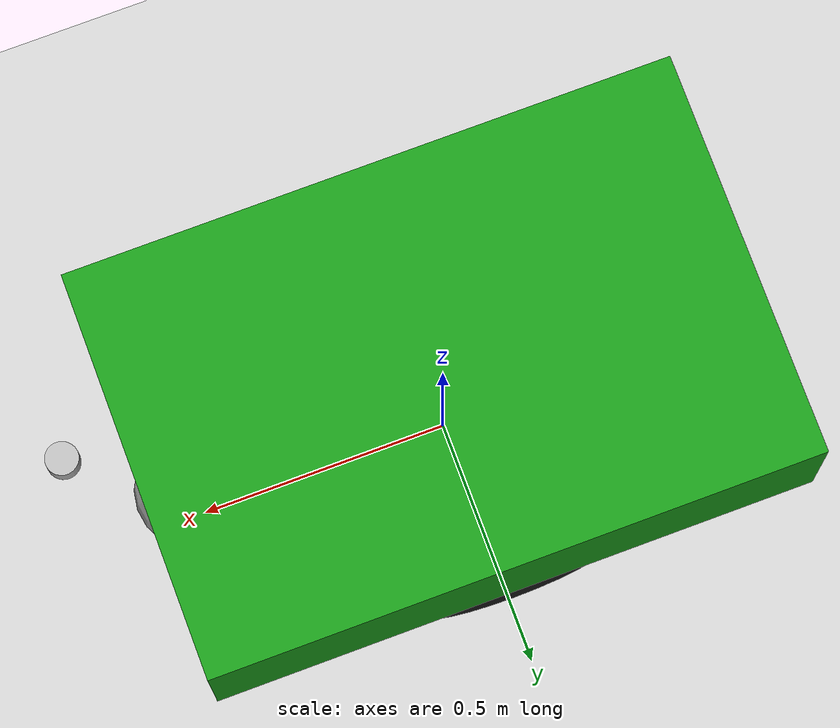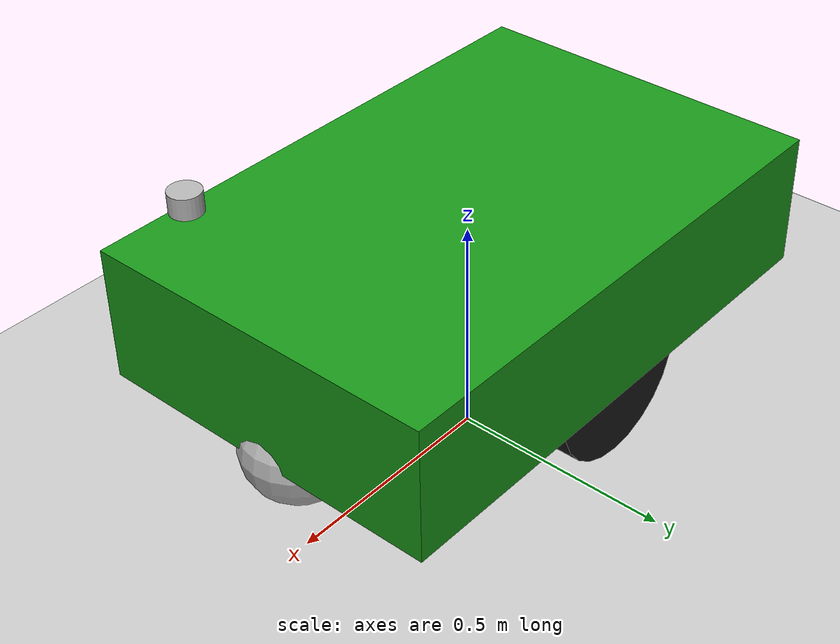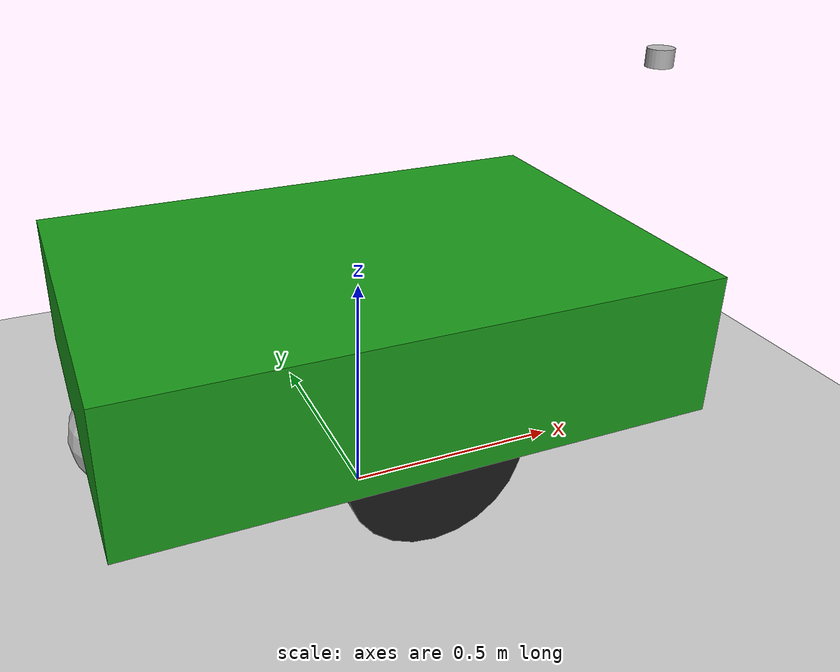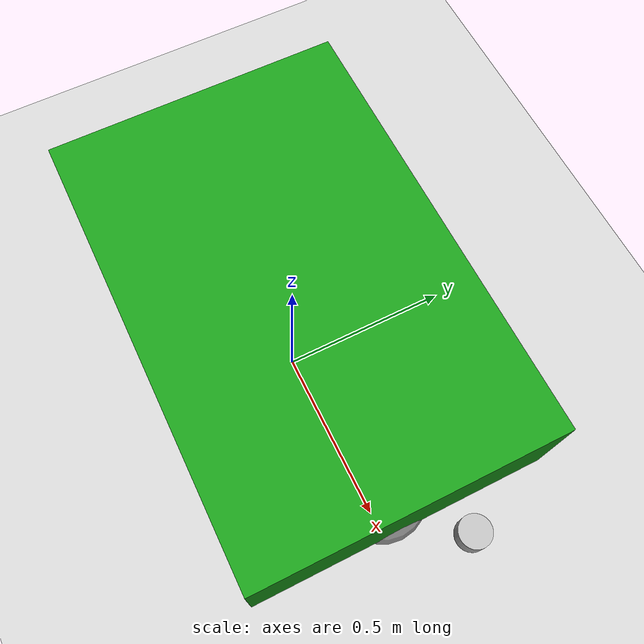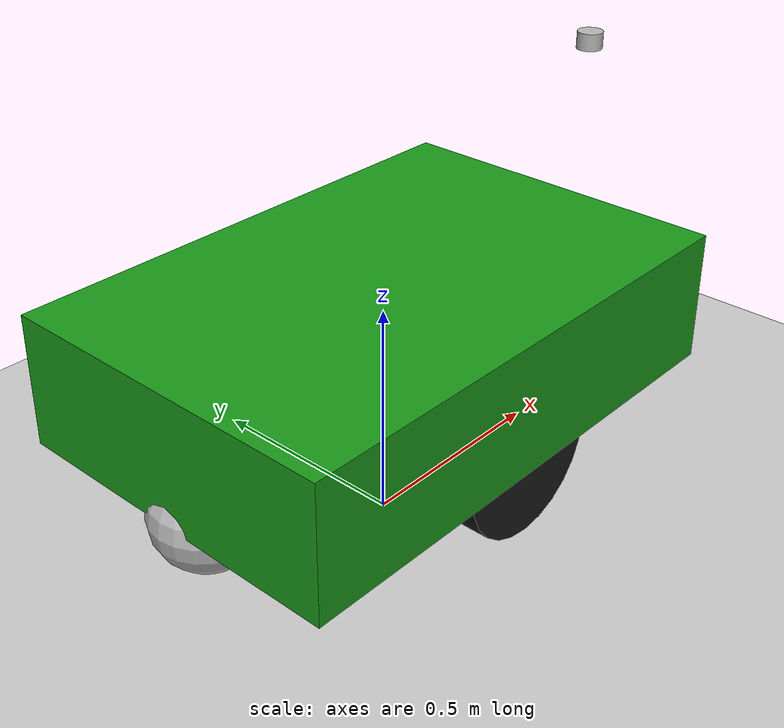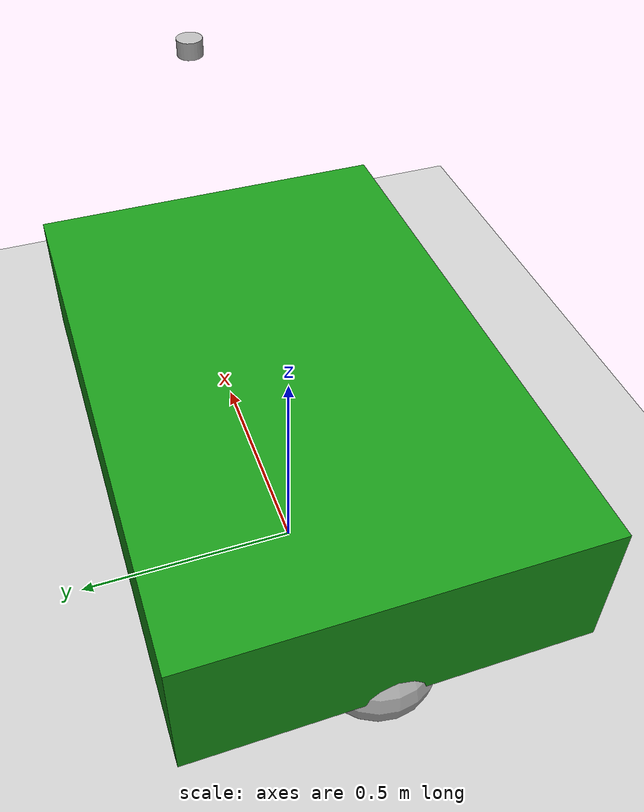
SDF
<sdf version="1.10">
 <world name="simple_field">
  <gravity>0 0 -9.81</gravity>
  <physics name="default" type="ignored"/>
  <scene><ambient>0.4 0.4 0.4 1</ambient><background>0.9 0.9 0.95 1</background></scene>
  <include><uri>https://fuel.gazebosim.org/1.0/openrobotics/models/Ground Plane</uri></include>
  <include><uri>model://tractor_simple</uri></include>
  <plugin name="gz::sim::systems::Physics" filename="gz-sim-physics-system"/>
  <plugin name="gz::sim::systems::Sensors" filename="gz-sim-sensors-system"/>
  <plugin name="gz::sim::systems::SceneBroadcaster" filename="gz-sim-scene-broadcaster-system"/>
  <plugin name="gz::sim::systems::UserCommands" filename="gz-sim-user-commands-system"/>
 </world>
</sdf>

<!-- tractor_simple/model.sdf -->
<sdf version="1.10">
  <model name="tractor_simple">
    <pose>0 0 0.22 0 0 0</pose>

    <!-- Chassis -->
    <link name="base_link">
      <pose>0 0 0.22 0 0 0</pose>
      <inertial>
        <mass>80</mass>
        <inertia>
          <ixx>4.9</ixx><iyy>10.0</iyy><izz>12.8</izz>
        </inertia>
      </inertial>
      <collision name="base_collision">
    <geometry>
      <box><size>1.2 0.8 0.3</size></box>
        </geometry>
      </collision>
      <visual name="base_visual">
        <geometry>
          <box><size>1.2 0.8 0.3</size></box>
        </geometry>
        <material><ambient>0.1 0.6 0.1 1</ambient></material>
      </visual>
    </link>

    <!-- Left wheel -->
    <link name="left_wheel">
      <pose>0 0.35 0.10 0 0 0</pose>
      <inertial><mass>5</mass></inertial>
      <collision name="left_wheel_collision">
        <pose>0 0 0 -1.5708 0 0</pose>
        <geometry><cylinder><radius>0.18</radius><length>0.08</length></cylinder></geometry>
      </collision>
      <visual name="left_wheel_visual">
        <pose>0 0 0 -1.5708 0 0</pose>
        <geometry><cylinder><radius>0.18</radius><length>0.08</length></cylinder></geometry>
        <material><ambient>0.1 0.1 0.1 1</ambient></material>
      </visual>
    </link>

    <!-- Right wheel -->
    <link name="right_wheel">
      <pose>0 -0.35 0.10 0 0 0</pose>
      <inertial><mass>5</mass></inertial>
      <collision name="right_wheel_collision">
        <pose>0 0 0 -1.5708 0 0</pose>
        <geometry><cylinder><radius>0.18</radius><length>0.08</length></cylinder></geometry>
      </collision>
      <visual name="right_wheel_visual">
        <pose>0 0 0 -1.5708 0 0</pose>
        <geometry><cylinder><radius>0.18</radius><length>0.08</length></cylinder></geometry>
        <material><ambient>0.1 0.1 0.1 1</ambient></material>
      </visual>
    </link>

    <!-- Front caster (simple) -->
    <link name="front_caster">
      <pose>0.5 0 0.05 0 0 0</pose>
      <inertial><mass>1</mass></inertial>
      <collision name="caster_collision">
        <geometry><sphere><radius>0.12</radius></sphere></geometry>
      </collision>
      <visual name="caster_visual">
        <geometry><sphere><radius>0.12</radius></sphere></geometry>
      </visual>
    </link>

    <!-- Rear caster (simple) -->
    <link name="rear_caster">
      <pose>-0.5 0 0.05 0 0 0</pose>
      <inertial><mass>1</mass></inertial>
      <collision name="caster_collision">
        <geometry><sphere><radius>0.12</radius></sphere></geometry>
      </collision>
      <visual name="caster_visual">
        <geometry><sphere><radius>0.12</radius></sphere></geometry>
      </visual>
    </link>

    <!-- Joints -->
    <joint name="left_wheel_joint" type="revolute">
      <parent>base_link</parent>
      <child>left_wheel</child>
      <pose>0 0 0 0 1.5708 0</pose>
      <axis>
        <xyz>0 1 0</xyz>
        <limit><lower>-1e16</lower><upper>1e16</upper></limit>
      </axis>
    </joint>

    <joint name="right_wheel_joint" type="revolute">
      <parent>base_link</parent>
      <child>right_wheel</child>
      <pose>0 0 0 0 1.5708 0</pose>
      <axis>
        <xyz>0 1 0</xyz>
        <limit><lower>-1e16</lower><upper>1e16</upper></limit>
      </axis>
    </joint>

    <joint name="front_caster_joint" type="ball">
      <parent>base_link</parent>
      <child>front_caster</child>
    </joint>

    <joint name="rear_caster_joint" type="ball">
      <parent>base_link</parent>
      <child>rear_caster</child>
    </joint>

    <!-- Diff drive plugin (Gazebo Sim system) -->
    <plugin name="gz::sim::systems::DiffDrive" filename="gz-sim-diff-drive-system">
      <left_joint>left_wheel_joint</left_joint>
      <right_joint>right_wheel_joint</right_joint>
      <wheel_separation>0.70</wheel_separation>
      <wheel_radius>0.18</wheel_radius>
      <odom_publish_frequency>30</odom_publish_frequency>
      <topic>/vehicle_cmd_vel</topic> <!-- Global topic -->
      <odom_frame>odom</odom_frame>
      <robot_base_frame>base_link</robot_base_frame>
      <min_velocity>-2.0</min_velocity>
      <max_velocity> 2.0</max_velocity>
      <min_acceleration>-3.0</min_acceleration>
      <max_acceleration> 3.0</max_acceleration>
    </plugin>

    <!-- LIDAR (GPU-based; needed in Harmonic) -->
    <link name="lidar_link">
      <pose>0.7 0 0.7 0 0 0.1</pose>
      <inertial><mass>0.1</mass></inertial>
      <collision name="lidar_col">
        <geometry><sphere><radius>0.02</radius></sphere></geometry>
      </collision>
      <visual name="lidar_vis">
        <geometry><cylinder><radius>0.03</radius><length>0.04</length></cylinder></geometry>
      </visual>
      <sensor name="front_lidar" type="gpu_lidar">
        <always_on>true</always_on>
        <visualize>true</visualize>
        <update_rate>20</update_rate>
        <topic>/sim/lidar</topic>
        <pose>0 0 0 0 0 0</pose>
        <lidar>
          <scan>
            <horizontal>
              <samples>720</samples>
              <min_angle>-1.5708</min_angle>
              <max_angle> 1.5708</max_angle>
            </horizontal>
          </scan>
          <range>
            <min>0.05</min>
            <max>50.0</max>
          </range>
        </lidar>
      </sensor>
    </link>
    <joint name="lidar_joint" type="fixed">
      <parent>base_link</parent>
      <child>lidar_link</child>
    </joint>

    <!-- RGB + Depth camera on a mast -->
    <link name="camera_link">
      <pose>0.5 0 0.9 0 0 0.1</pose>
      <inertial><mass>0.1</mass></inertial>
      <collision name="cam_col">
        <geometry><box><size>0.02 0.02 0.02</size></box></geometry>
      </collision>
      <sensor name="front_rgb" type="camera">
        <visualize>true</visualize>
        <topic>/sim/cam/rgb</topic>
        <camera>
          <horizontal_fov>1.047</horizontal_fov>
          <image><width>640</width><height>480</height><format>R8G8B8</format></image>
          <clip><near>0.05</near><far>50</far></clip>
        </camera>
        <update_rate>20</update_rate>
        <always_on>true</always_on>
      </sensor>

      <sensor name="front_depth" type="depth_camera">
        <visualize>true</visualize>
        <topic>/sim/cam/depth</topic>
        <camera>
          <horizontal_fov>1.047</horizontal_fov>
          <image>
            <width>640</width>
            <height>480</height>
          </image>
          <clip><near>0.05</near><far>50</far></clip>
        </camera>
        <update_rate>20</update_rate>
        <always_on>true</always_on>
      </sensor>
    </link>
    <joint name="camera_joint" type="fixed">
      <parent>base_link</parent>
      <child>camera_link</child>
    </joint>

  </model>
</sdf>
